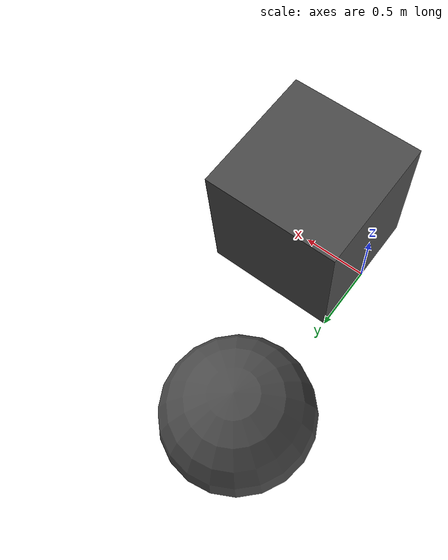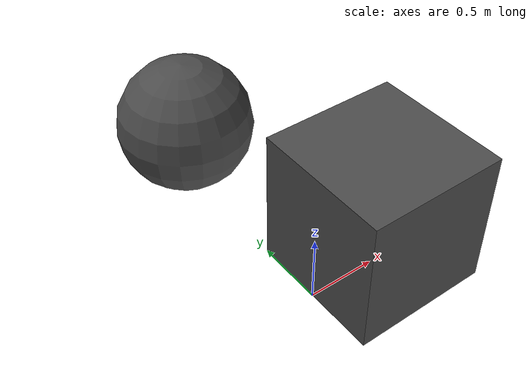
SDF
<?xml version="1.0" ?>
<!--
  This demo shows various types of lights, including lights attached to links.
-->
<sdf version="1.6">
  <world name="lights">
    <physics name="1ms" type="ignored">
      <max_step_size>0.001</max_step_size>
      <real_time_factor>1.0</real_time_factor>
    </physics>
    <plugin
      filename="ignition-gazebo-physics-system"
      name="ignition::gazebo::systems::Physics">
    </plugin>
    <plugin
      filename="ignition-gazebo-user-commands-system"
      name="ignition::gazebo::systems::UserCommands">
    </plugin>
    <plugin
      filename="ignition-gazebo-scene-broadcaster-system"
      name="ignition::gazebo::systems::SceneBroadcaster">
    </plugin>

    <scene>
      <ambient>0.4 0.4 0.4</ambient>
      <background>0.8 0.8 0.8</background>
      <grid>true</grid>
    </scene>

    <light type="directional" name="directional">
      <cast_shadows>true</cast_shadows>
      <pose>0 0 10 0 0 0</pose>
      <diffuse>0.8 0.8 0.8 1</diffuse>
      <specular>0.2 0.2 0.2 1</specular>
      <attenuation>
        <range>100</range>
        <constant>0.9</constant>
        <linear>0.01</linear>
        <quadratic>0.001</quadratic>
      </attenuation>
      <direction>0.5 0.2 -0.9</direction>
    </light>

    <model name="box">
      <pose>0 0 0.5 0 0 0</pose>
      <link name="box_link">
        <inertial>
          <inertia>
            <ixx>1</ixx>
            <ixy>0</ixy>
            <ixz>0</ixz>
            <iyy>1</iyy>
            <iyz>0</iyz>
            <izz>1</izz>
          </inertia>
          <mass>1.0</mass>
        </inertial>
        <collision name="box_collision">
          <pose>0 0.5 0.5 0 0 0</pose>
          <geometry>
            <box>
              <size>1 1 1</size>
            </box>
          </geometry>
        </collision>

        <visual name="box_visual">
          <pose>0.5 0 0 0 0 0</pose>
          <geometry>
            <box>
              <size>1 1 1</size>
            </box>
          </geometry>
          <material>
            <ambient>0.3 0.3 0.3 1</ambient>
            <diffuse>0.3 0.3 0.3 1</diffuse>
            <specular>0.3 0.5 0.3 1</specular>
          </material>
        </visual>
      </link>
    </model>
    <model name="sphere">
      <pose>0 1.5 0.5 0 0 0</pose>
      <link name="sphere_link">
        <inertial>
          <inertia>
            <ixx>3</ixx>
            <ixy>0</ixy>
            <ixz>0</ixz>
            <iyy>3</iyy>
            <iyz>0</iyz>
            <izz>3</izz>
          </inertia>
          <mass>3.0</mass>
        </inertial>
        <collision name="sphere_collision">
          <geometry>
            <sphere>
              <radius>0.5</radius>
            </sphere>
          </geometry>
        </collision>

        <visual name="sphere_visual">
          <geometry>
            <sphere>
              <radius>0.5</radius>
            </sphere>
          </geometry>
          <material>
            <ambient>0.3 0.3 0.3 1</ambient>
            <diffuse>0.3 0.3 0.3 1</diffuse>
            <specular>0.3 0.3 0.3 1</specular>
          </material>
        </visual>

        <light type="point" name="link_light_point">
          <pose>0 0 0.8 0 0 0</pose>
          <diffuse>0 0 1 1</diffuse>
          <specular>.1 .1 .1 1</specular>
          <attenuation>
            <range>2</range>
            <linear>0.02</linear>
            <constant>0.05</constant>
            <quadratic>0.01</quadratic>
          </attenuation>
          <cast_shadows>false</cast_shadows>
        </light>
      </link>
    </model>
  </world>
</sdf>
